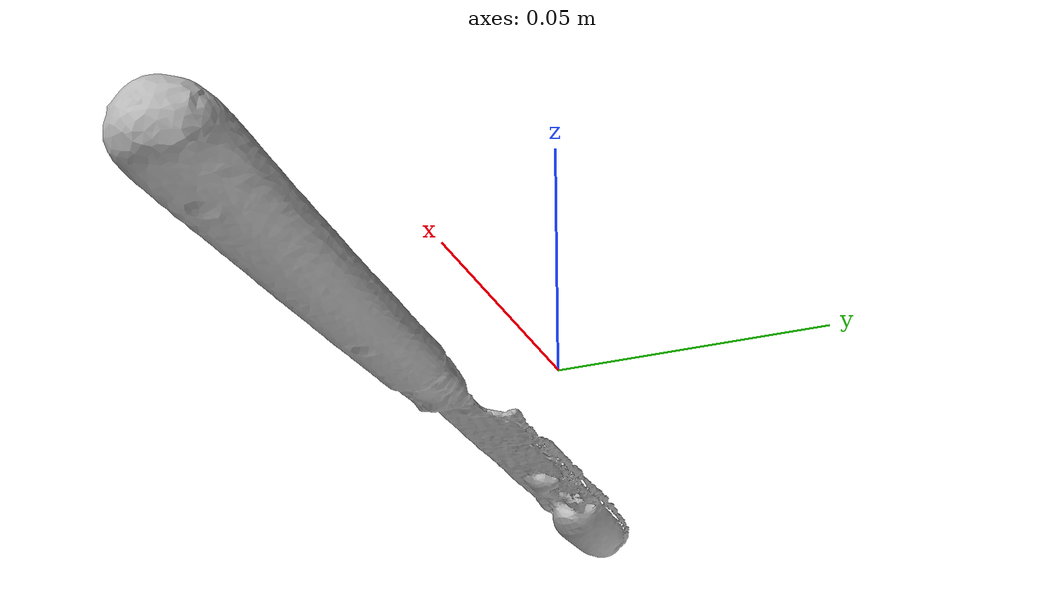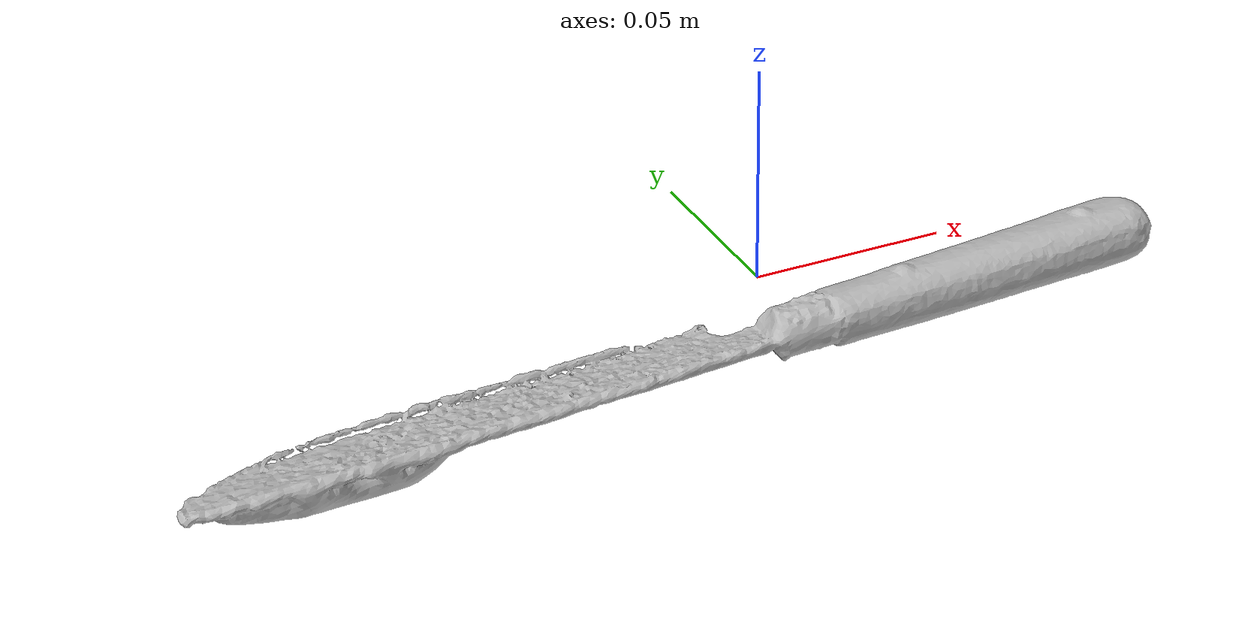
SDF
<?xml version='1.0'?>
<sdf version="1.4">
  <model name="knife">
    <static>false</static>
    <link name="link">
      <inertial>
        <pose>0.008445076147284661 -0.02909263128347303 0.005000385834128537 1.8002288679382237 1.3472770212679417 -1.3518243250563429</pose>
        <mass>2.1835475900861335e-05</mass>
        <inertia>
          <ixx>8.208165528866138e-08</ixx>
          <ixy>-2.26561083116292e-23</ixy>
          <ixz>9.447962194824998e-25</ixz>
          <iyy>8.190889709718928e-08</iyy>
          <iyz>-1.3535696424378433e-24</iyz>
          <izz>5.818794340795577e-10</izz>
        </inertia>
      </inertial>
      <collision name="collision">
        <geometry>
          <mesh>
            <!-- Use a downsampled mesh for collisions -->
            <uri>model://032_knife/google_16k/032_knife.obj</uri>
            </mesh>
        </geometry>
        <surface>
          <friction>
            <ode>
              <mu>0.9</mu>
              <mu2>0.9</mu2>
            </ode>
          </friction>
          <contact>
            <ode>
              <kp>1000000000000.0</kp>
              <kd>1</kd>
              <min_depth>0.0001</min_depth>
              <max_vel>0.01</max_vel>
            </ode>
          </contact>
          <bounce>
            <restitution_coefficient>0.1</restitution_coefficient>
            <threshold>1000.0</threshold>
          </bounce>
        </surface>
      </collision>
      <visual name="visual">
        <geometry>
          <mesh>
            <uri>model://032_knife/google_16k/032_knife.dae</uri>
            </mesh>
        </geometry>
      </visual>
    </link>
  </model>
</sdf>
